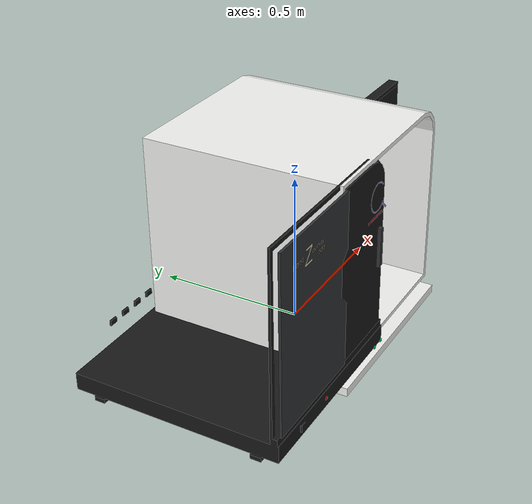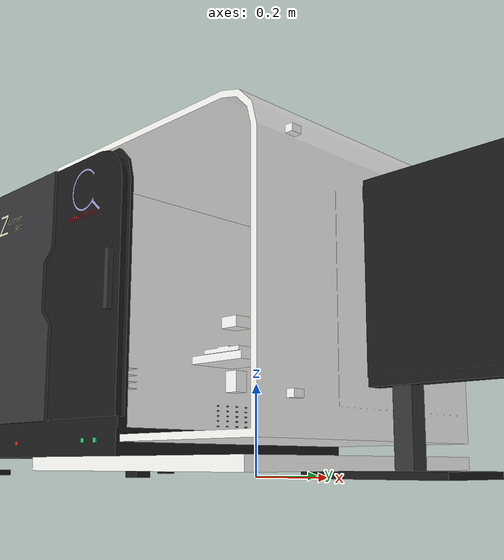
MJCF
<?xml version='1.0' encoding='utf-8'?>
<mujoco model="Hamamatsu NanoZoomer S60 | static asset inspection">
  <compiler angle="radian" />
  <visual>
    <global offwidth="1000" offheight="600" />
    <headlight ambient=".4 .4 .4" diffuse=".6 .6 .6" />
  </visual>
  <asset>
    <texture type="skybox" builtin="gradient" rgb1=".92 .95 .97" rgb2=".70 .78 .84" width="512" height="3072" />
    <mesh name="s60_0" file="meshes/s60_0.obj" inertia="shell" />
    <mesh name="s60_1" file="meshes/s60_1.obj" inertia="shell" />
    <mesh name="s60_2" file="meshes/s60_2.obj" inertia="shell" />
    <mesh name="s60_3" file="meshes/s60_3.obj" inertia="shell" />
    <mesh name="s60_4" file="meshes/s60_4.obj" inertia="shell" />
    <mesh name="s60_5" file="meshes/s60_5.obj" inertia="shell" />
    <mesh name="s60_6" file="meshes/s60_6.obj" inertia="shell" />
    <mesh name="s60_7" file="meshes/s60_7.obj" inertia="shell" />
    <mesh name="s60_8" file="meshes/s60_8.obj" inertia="shell" />
    <mesh name="s60_9" file="meshes/s60_9.obj" inertia="shell" />
  </asset>
  <worldbody>
    <geom type="mesh" mesh="s60_0" rgba="0.960784314 0.960784314 0.964705882 1" contype="0" conaffinity="0" density="0" />
    <geom type="mesh" mesh="s60_1" rgba="0.0980392157 0.0980392157 0.0980392157 1" contype="0" conaffinity="0" density="0" />
    <geom type="mesh" mesh="s60_2" rgba="1 1 1 1" contype="0" conaffinity="0" density="0" />
    <geom type="mesh" mesh="s60_3" rgba="0.964705882 0.964705882 0.952941176 1" contype="0" conaffinity="0" density="0" />
    <geom type="mesh" mesh="s60_4" rgba="0.188235294 0.196078431 0.203921569 1" contype="0" conaffinity="0" density="0" />
    <geom type="mesh" mesh="s60_5" rgba="0.137254902 0.823529412 0.470588235 1" contype="0" conaffinity="0" density="0" />
    <geom type="mesh" mesh="s60_6" rgba="0.823529412 0.176470588 0.176470588 1" contype="0" conaffinity="0" density="0" />
    <geom type="mesh" mesh="s60_7" rgba="0.878431373 0.839215686 0.71372549 1" contype="0" conaffinity="0" density="0" />
    <geom type="mesh" mesh="s60_8" rgba="0.870588235 0.184313725 0.254901961 1" contype="0" conaffinity="0" density="0" />
    <geom type="mesh" mesh="s60_9" rgba="0.635294118 0.580392157 0.807843137 1" contype="0" conaffinity="0" density="0" />
  </worldbody>
</mujoco>
